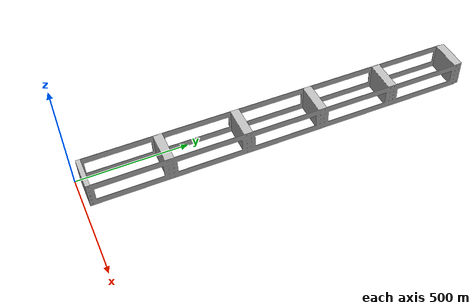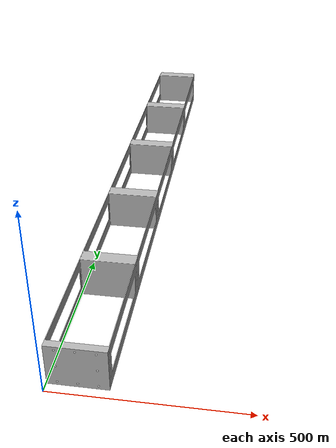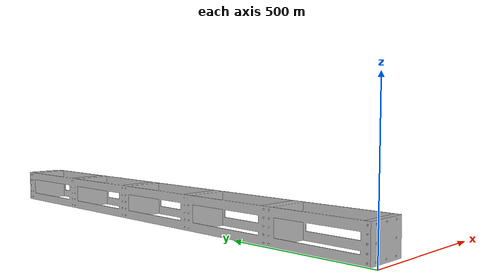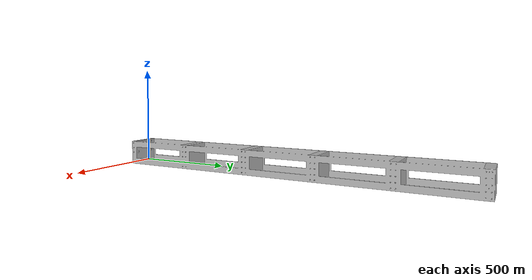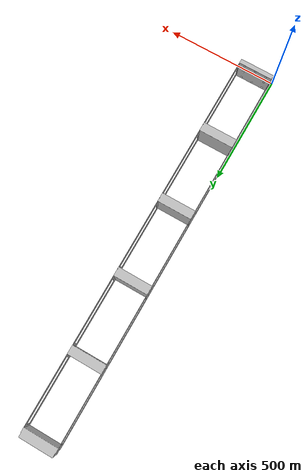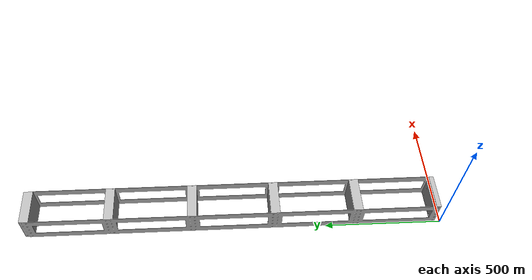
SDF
<sdf version="1.6">
  <model name="shear_building">
    <static>false</static> <!-- Allow movement with the shaking table -->
    <link name="building">
      <pose>0 0 0 0 0 0</pose> <!-- Centered on the shaking table -->

      <!-- Visual -->
      <visual name="building_visual">
        <geometry>
          <mesh>
            <uri>model://shear_building/meshes/shear_building.STL</uri>
          </mesh>
        </geometry>
      </visual>

      <!-- Collision -->
      <collision name="building_collision">
        <geometry>
          <mesh>
            <uri>model://shear_building/meshes/shear_building.STL</uri>
          </mesh>
        </geometry>
      </collision>
    </link>
  </model>
</sdf>
